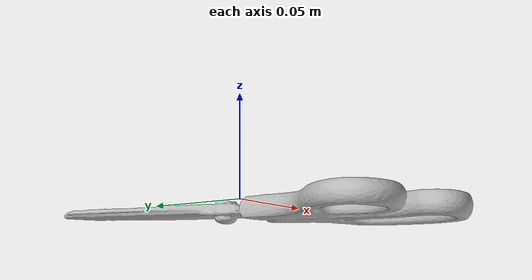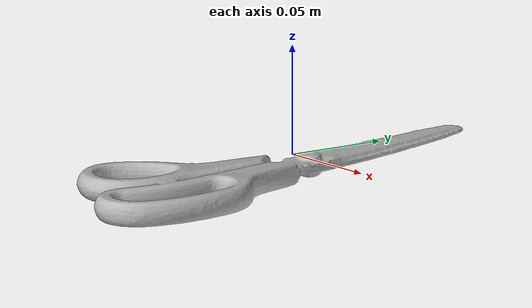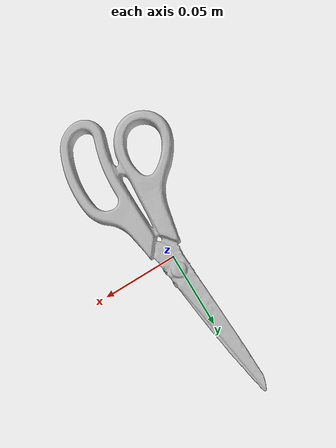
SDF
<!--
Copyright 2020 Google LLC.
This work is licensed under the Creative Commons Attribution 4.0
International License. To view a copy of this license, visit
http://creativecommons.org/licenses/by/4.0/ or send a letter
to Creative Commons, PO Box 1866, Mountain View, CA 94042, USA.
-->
<?xml version="1.0" ?>
<sdf version="1.6">
  <model name="Diamond_Visions_Scissors_Red">
    <link name="link_0">
      <visual name="visual">
        <geometry>
          <mesh>
            <uri>meshes/model.obj</uri>
          </mesh>
        </geometry>
      </visual>
      <collision name="collision_0">
        <geometry>
          <mesh>
            <uri>meshes/model.obj</uri>
          </mesh>
        </geometry>
      </collision>
    </link>
  </model>
</sdf>
